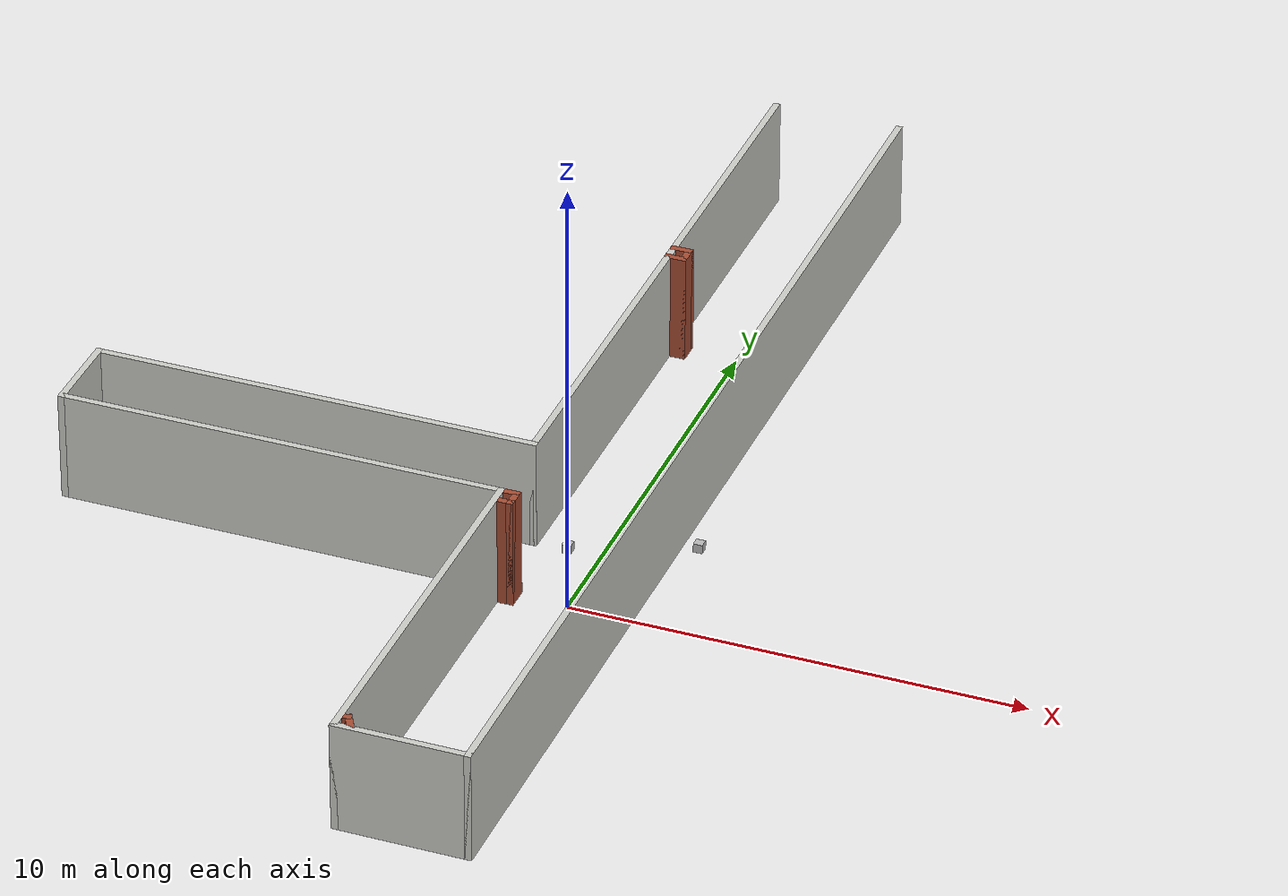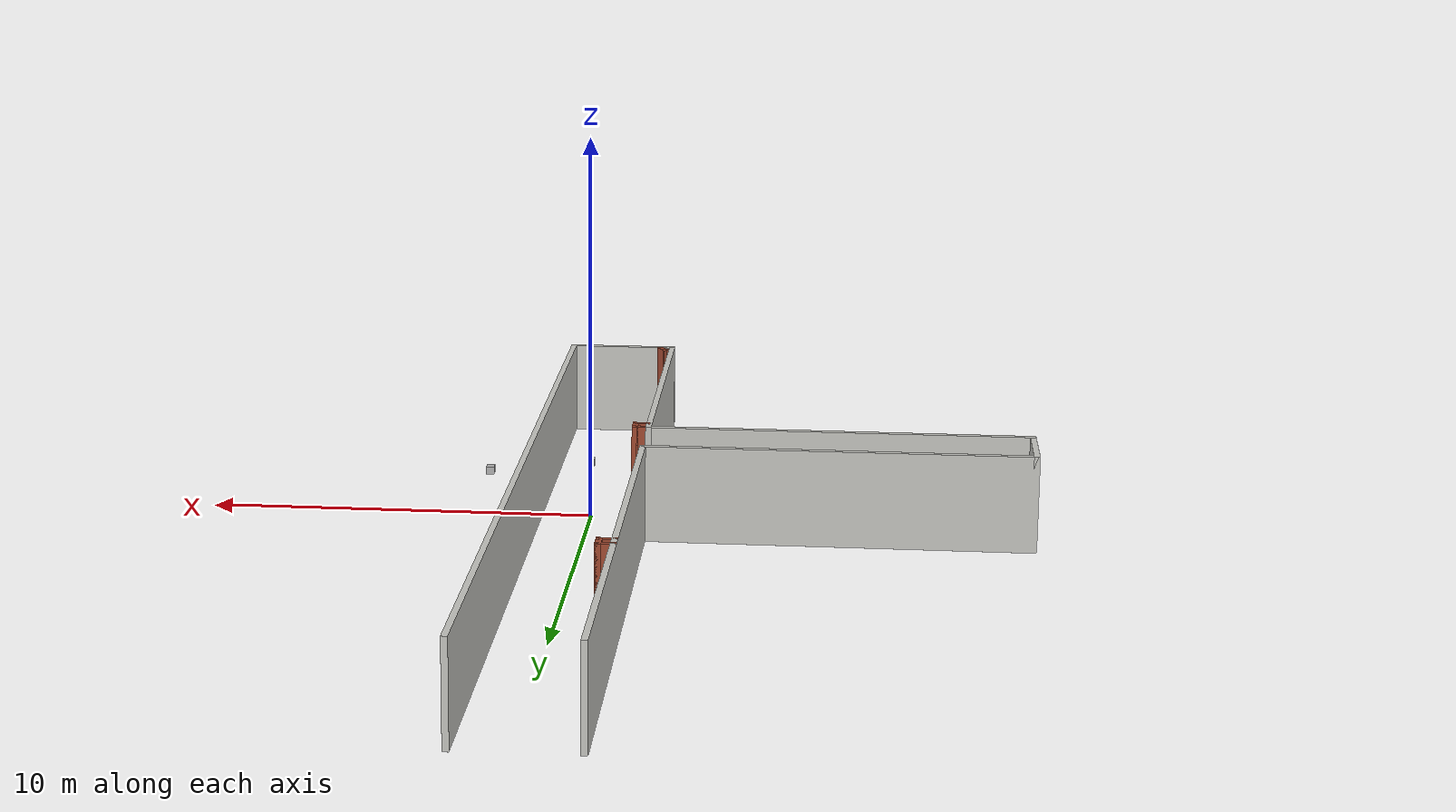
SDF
<sdf version="1.4">
  <world name="default">

  <gui>
    <camera name="user_camera">
      <pose>6 6 22 0 1.5707 1.5707</pose>
    </camera>
  </gui>

    <scene>
      <ambient>0.4 0.4 0.4 1</ambient>
      <background>0.7 0.7 0.7 1</background>
      <shadows>true</shadows>
    </scene>

    <!-- A global light source -->
    <include>
      <uri>model://sun</uri>
    </include>

    <include>
      <uri>model://AC2</uri>
      <pose>-5.0 3.9 0 0 0 0</pose>
    </include>

    <model name="uwb_anchor0">
      <pose>0 0 1.5 0 0 0</pose>
      <static>1</static>
      <link name="link">
        <visual name="visual">
          <geometry>
            <box>
              <size>0.2 0.2 0.2</size>
            </box>
          </geometry>
        </visual>
      </link>
    </model>
    <model name="uwb_anchor1">
      <pose>-2.5 1 1.5 0 0 0</pose>
      <static>1</static>
      <link name="link">
        <visual name="visual">
          <geometry>
            <box>
              <size>0.2 0.2 0.2</size>
            </box>
          </geometry>
        </visual>
      </link>
    </model>
    <model name="uwb_anchor2">
      <pose>2.5 1 1.5 0 0 0</pose>
      <static>1</static>
      <link name="link">
        <visual name="visual">
          <geometry>
            <box>
              <size>0.2 0.2 0.2</size>
            </box>
          </geometry>
        </visual>
      </link>
    </model>

    <physics type="ode">
      <real_time_update_rate>500.0</real_time_update_rate>
      <max_step_size>0.002</max_step_size>
      <real_time_factor>1</real_time_factor>
      <ode>
        <solver>
          <type>quick</type>
          <iters>150</iters>
          <precon_iters>0</precon_iters>
          <sor>1.400000</sor>
          <use_dynamic_moi_rescaling>1</use_dynamic_moi_rescaling>
        </solver>
        <constraints>
          <cfm>0.00001</cfm>
          <erp>0.2</erp>
          <contact_max_correcting_vel>2000.000000</contact_max_correcting_vel>
          <contact_surface_layer>0.01000</contact_surface_layer>
        </constraints>
      </ode>
    </physics>
  </world>

</sdf>

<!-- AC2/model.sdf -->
<sdf version='1.6'>
  <model name='AC2'>
    <pose frame=''>-4.96 -0.245 0 0 -0 0</pose>
    <link name='Wall_0'>
      <collision name='Wall_0_Collision'>
        <geometry>
          <box>
            <size>3 0.15 2.5</size>
          </box>
        </geometry>
        <pose frame=''>0 0 1.25 0 -0 0</pose>
      </collision>
      <visual name='Wall_0_Visual'>
        <pose frame=''>0 0 1.25 0 -0 0</pose>
        <geometry>
          <box>
            <size>3 0.15 2.5</size>
          </box>
        </geometry>
        <material>
          <script>
            <uri>file://media/materials/scripts/gazebo.material</uri>
            <name>Gazebo/CeilingTiled</name>
          </script>
          <ambient>1 1 1 1</ambient>
        </material>
        <meta>
          <layer>0</layer>
        </meta>
      </visual>
      <pose frame=''>4.925 -12.675 0 0 -0 0</pose>
    </link>
    <link name='Wall_1'>
      <collision name='Wall_1_Collision'>
        <geometry>
          <box>
            <size>25.5 0.15 2.5</size>
          </box>
        </geometry>
        <pose frame=''>0 0 1.25 0 -0 0</pose>
      </collision>
      <visual name='Wall_1_Visual'>
        <pose frame=''>0 0 1.25 0 -0 0</pose>
        <geometry>
          <box>
            <size>25.5 0.15 2.5</size>
          </box>
        </geometry>
        <material>
          <script>
            <uri>file://media/materials/scripts/gazebo.material</uri>
            <name>Gazebo/CeilingTiled</name>
          </script>
          <ambient>1 1 1 1</ambient>
        </material>
        <meta>
          <layer>0</layer>
        </meta>
      </visual>
      <pose frame=''>6.35 -0 0 0 -0 1.5708</pose>
    </link>
    <link name='Wall_10'>
      <collision name='Wall_10_Collision'>
        <geometry>
          <box>
            <size>0.5 0.15 2.5</size>
          </box>
        </geometry>
        <pose frame=''>0 0 1.25 0 -0 0</pose>
      </collision>
      <visual name='Wall_10_Visual'>
        <pose frame=''>0 0 1.25 0 -0 0</pose>
        <geometry>
          <box>
            <size>0.5 0.15 2.5</size>
          </box>
        </geometry>
        <material>
          <script>
            <uri>file://media/materials/scripts/gazebo.material</uri>
            <name>Gazebo/Bricks</name>
          </script>
          <ambient>1 1 1 1</ambient>
        </material>
        <meta>
          <layer>0</layer>
        </meta>
      </visual>
      <pose frame=''>3.85 -4 0 0 -0 -1.5708</pose>
    </link>
    <link name='Wall_11'>
      <collision name='Wall_11_Collision'>
        <geometry>
          <box>
            <size>0.5 0.15 2.5</size>
          </box>
        </geometry>
        <pose frame=''>0 0 1.25 0 -0 0</pose>
      </collision>
      <visual name='Wall_11_Visual'>
        <pose frame=''>0 0 1.25 0 -0 0</pose>
        <geometry>
          <box>
            <size>0.5 0.15 2.5</size>
          </box>
        </geometry>
        <material>
          <script>
            <uri>file://media/materials/scripts/gazebo.material</uri>
            <name>Gazebo/Bricks</name>
          </script>
          <ambient>1 1 1 1</ambient>
        </material>
        <meta>
          <layer>0</layer>
        </meta>
      </visual>
      <pose frame=''>3.675 -4.175 0 0 -0 3.14159</pose>
    </link>
    <link name='Wall_13'>
      <collision name='Wall_13_Collision'>
        <geometry>
          <box>
            <size>0.25 0.15 2.5</size>
          </box>
        </geometry>
        <pose frame=''>0 0 1.25 0 -0 0</pose>
      </collision>
      <visual name='Wall_13_Visual'>
        <pose frame=''>0 0 1.25 0 -0 0</pose>
        <geometry>
          <box>
            <size>0.25 0.15 2.5</size>
          </box>
        </geometry>
        <material>
          <script>
            <uri>file://media/materials/scripts/gazebo.material</uri>
            <name>Gazebo/Bricks</name>
          </script>
          <ambient>1 1 1 1</ambient>
        </material>
        <meta>
          <layer>0</layer>
        </meta>
      </visual>
      <pose frame=''>3.62305 -12.3503 0 0 -0 0.261799</pose>
    </link>
    <link name='Wall_14'>
      <collision name='Wall_14_Collision'>
        <geometry>
          <box>
            <size>0.5 0.15 2.5</size>
          </box>
        </geometry>
        <pose frame=''>0 0 1.25 0 -0 0</pose>
      </collision>
      <visual name='Wall_14_Visual'>
        <pose frame=''>0 0 1.25 0 -0 0</pose>
        <geometry>
          <box>
            <size>0.5 0.15 2.5</size>
          </box>
        </geometry>
        <material>
          <script>
            <uri>file://media/materials/scripts/gazebo.material</uri>
            <name>Gazebo/Bricks</name>
          </script>
          <ambient>1 1 1 1</ambient>
        </material>
        <meta>
          <layer>0</layer>
        </meta>
      </visual>
      <pose frame=''>3.75884 -12.4889 0 0 -0 -1.0472</pose>
    </link>
    <link name='Wall_19'>
      <collision name='Wall_19_Collision'>
        <geometry>
          <box>
            <size>0.5 0.15 2.5</size>
          </box>
        </geometry>
        <pose frame=''>0 0 1.25 0 -0 0</pose>
      </collision>
      <visual name='Wall_19_Visual'>
        <pose frame=''>0 0 1.25 0 -0 0</pose>
        <geometry>
          <box>
            <size>0.5 0.15 2.5</size>
          </box>
        </geometry>
        <material>
          <script>
            <uri>file://media/materials/scripts/gazebo.material</uri>
            <name>Gazebo/Bricks</name>
          </script>
          <ambient>1 1 1 1</ambient>
        </material>
        <meta>
          <layer>0</layer>
        </meta>
      </visual>
      <pose frame=''>3.67591 5.87263 0 0 -0 0</pose>
    </link>
    <link name='Wall_20'>
      <collision name='Wall_20_Collision'>
        <geometry>
          <box>
            <size>0.5 0.15 2.5</size>
          </box>
        </geometry>
        <pose frame=''>0 0 1.25 0 -0 0</pose>
      </collision>
      <visual name='Wall_20_Visual'>
        <pose frame=''>0 0 1.25 0 -0 0</pose>
        <geometry>
          <box>
            <size>0.5 0.15 2.5</size>
          </box>
        </geometry>
        <material>
          <script>
            <uri>file://media/materials/scripts/gazebo.material</uri>
            <name>Gazebo/Bricks</name>
          </script>
          <ambient>1 1 1 1</ambient>
        </material>
        <meta>
          <layer>0</layer>
        </meta>
      </visual>
      <pose frame=''>3.85091 6.04763 0 0 -0 1.5708</pose>
    </link>
    <link name='Wall_21'>
      <collision name='Wall_21_Collision'>
        <geometry>
          <box>
            <size>0.5 0.15 2.5</size>
          </box>
        </geometry>
        <pose frame=''>0 0 1.25 0 -0 0</pose>
      </collision>
      <visual name='Wall_21_Visual'>
        <pose frame=''>0 0 1.25 0 -0 0</pose>
        <geometry>
          <box>
            <size>0.5 0.15 2.5</size>
          </box>
        </geometry>
        <material>
          <script>
            <uri>file://media/materials/scripts/gazebo.material</uri>
            <name>Gazebo/Bricks</name>
          </script>
          <ambient>1 1 1 1</ambient>
        </material>
        <meta>
          <layer>0</layer>
        </meta>
      </visual>
      <pose frame=''>3.67591 6.22263 0 0 -0 3.14159</pose>
    </link>
    <link name='Wall_3'>
      <collision name='Wall_3_Collision'>
        <geometry>
          <box>
            <size>9 0.15 2.5</size>
          </box>
        </geometry>
        <pose frame=''>0 0 1.25 0 -0 0</pose>
      </collision>
      <visual name='Wall_3_Visual'>
        <pose frame=''>0 0 1.25 0 -0 0</pose>
        <geometry>
          <box>
            <size>9 0.15 2.5</size>
          </box>
        </geometry>
        <material>
          <script>
            <uri>file://media/materials/scripts/gazebo.material</uri>
            <name>Gazebo/CeilingTiled</name>
          </script>
          <ambient>1 1 1 1</ambient>
        </material>
        <meta>
          <layer>0</layer>
        </meta>
      </visual>
      <pose frame=''>3.5 -8.25 0 0 -0 1.5708</pose>
    </link>
    <link name='Wall_4'>
      <collision name='Wall_4_Collision'>
        <geometry>
          <box>
            <size>10 0.15 2.5</size>
          </box>
        </geometry>
        <pose frame=''>0 0 1.25 0 -0 0</pose>
      </collision>
      <visual name='Wall_4_Visual'>
        <pose frame=''>0 0 1.25 0 -0 0</pose>
        <geometry>
          <box>
            <size>10 0.15 2.5</size>
          </box>
        </geometry>
        <material>
          <script>
            <uri>file://media/materials/scripts/gazebo.material</uri>
            <name>Gazebo/CeilingTiled</name>
          </script>
          <ambient>1 1 1 1</ambient>
        </material>
        <meta>
          <layer>0</layer>
        </meta>
      </visual>
      <pose frame=''>-1.425 -3.825 0 0 -0 3.14159</pose>
    </link>
    <link name='Wall_5'>
      <collision name='Wall_5_Collision'>
        <geometry>
          <box>
            <size>2 0.15 2.5</size>
          </box>
        </geometry>
        <pose frame=''>0 0 1.25 0 -0 0</pose>
      </collision>
      <visual name='Wall_5_Visual'>
        <pose frame=''>0 0 1.25 0 -0 0</pose>
        <geometry>
          <box>
            <size>2 0.15 2.5</size>
          </box>
        </geometry>
        <material>
          <script>
            <uri>file://media/materials/scripts/gazebo.material</uri>
            <name>Gazebo/CeilingTiled</name>
          </script>
          <ambient>1 1 1 1</ambient>
        </material>
        <meta>
          <layer>0</layer>
        </meta>
      </visual>
      <pose frame=''>-6.35 -2.9 0 0 -0 1.5708</pose>
    </link>
    <link name='Wall_6'>
      <collision name='Wall_6_Collision'>
        <geometry>
          <box>
            <size>10 0.15 2.5</size>
          </box>
        </geometry>
        <pose frame=''>0 0 1.25 0 -0 0</pose>
      </collision>
      <visual name='Wall_6_Visual'>
        <pose frame=''>0 0 1.25 0 -0 0</pose>
        <geometry>
          <box>
            <size>10 0.15 2.5</size>
          </box>
        </geometry>
        <material>
          <script>
            <uri>file://media/materials/scripts/gazebo.material</uri>
            <name>Gazebo/CeilingTiled</name>
          </script>
          <ambient>1 1 1 1</ambient>
        </material>
        <meta>
          <layer>0</layer>
        </meta>
      </visual>
      <pose frame=''>-1.425 -1.975 0 0 -0 0</pose>
    </link>
    <link name='Wall_7'>
      <collision name='Wall_7_Collision'>
        <geometry>
          <box>
            <size>14.75 0.15 2.5</size>
          </box>
        </geometry>
        <pose frame=''>0 0 1.25 0 -0 0</pose>
      </collision>
      <visual name='Wall_7_Visual'>
        <pose frame=''>0 0 1.25 0 -0 0</pose>
        <geometry>
          <box>
            <size>14.75 0.15 2.5</size>
          </box>
        </geometry>
        <material>
          <script>
            <uri>file://media/materials/scripts/gazebo.material</uri>
            <name>Gazebo/CeilingTiled</name>
          </script>
          <ambient>1 1 1 1</ambient>
        </material>
        <meta>
          <layer>0</layer>
        </meta>
      </visual>
      <pose frame=''>3.5 5.325 0 0 -0 1.5708</pose>
    </link>
    <link name='Wall_9'>
      <collision name='Wall_9_Collision'>
        <geometry>
          <box>
            <size>0.5 0.15 2.5</size>
          </box>
        </geometry>
        <pose frame=''>0 0 1.25 0 -0 0</pose>
      </collision>
      <visual name='Wall_9_Visual'>
        <pose frame=''>0 0 1.25 0 -0 0</pose>
        <geometry>
          <box>
            <size>0.5 0.15 2.5</size>
          </box>
        </geometry>
        <material>
          <script>
            <uri>file://media/materials/scripts/gazebo.material</uri>
            <name>Gazebo/Bricks</name>
          </script>
          <ambient>1 1 1 1</ambient>
        </material>
        <meta>
          <layer>0</layer>
        </meta>
      </visual>
      <pose frame=''>3.675 -3.825 0 0 -0 0</pose>
    </link>
    <static>1</static>
  </model>
</sdf>
